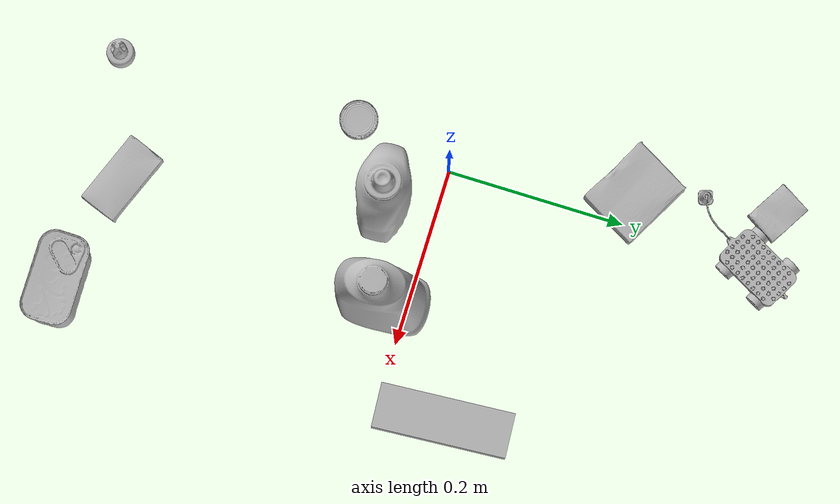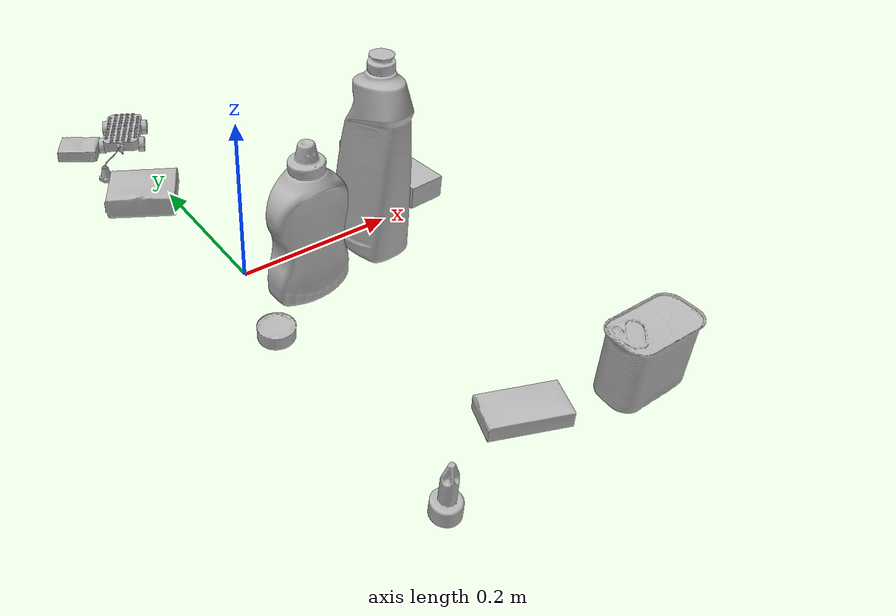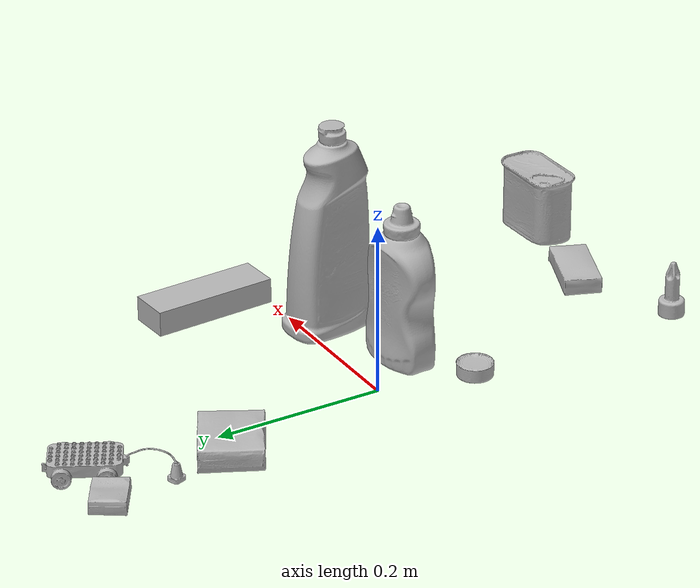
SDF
<sdf version="1.4">
  <world name="default">
    <light name="light1" type="point">
      <pose>0 0 1 0 0 0</pose>
      <diffuse>3 3 3 1</diffuse>
      <specular>3 3 3 1</specular>
    </light>
    <light name="light2" type="point">
      <pose>0 0.5 2 0 0 0</pose>
      <diffuse>1 1 1 1</diffuse>
      <specular>1 1 1 1</specular>
    </light>
    <light name="light3" type="point">
      <pose>0 0.5 2 0 0 0</pose>
      <diffuse>3 3 3 1</diffuse>
      <specular>3 3 3 1</specular>
    </light>
    <scene>
      <ambient>0.7 0.7 0.7</ambient>
    </scene>
    <model name="bottle1">
      <link name="link_bottle1">
        <collision name="default">
          <geometry>
            <mesh>
              <uri>model://bleach_cleanser/collision_meshes/collision.obj</uri>
              <scale>1.0 1.0 1.0</scale>
            </mesh>
          </geometry>
          <surface>
            <friction>
              <ode>
                <mu>0.5</mu>
                <mu2>0.5</mu2>
              </ode>
            </friction>
          <contact>
        <ode>
            <max_vel>0</max_vel>
            <min_depth>0.0001</min_depth>
            <kp>1e8</kp>
        </ode>
    </contact></surface>
        </collision>
        <visual name="default">
          <geometry>
            <mesh>
              <uri>model://bleach_cleanser/visual_meshes/visual.dae</uri>
              <scale>1.0 1.0 1.0</scale>
            </mesh>
          </geometry>
        </visual>
        <inertial>
          <mass>0.8435376882553101</mass>
          <pose>0.00012193185102660209 0.0037838835269212723 -0.02442161925137043 -0.0738167136291003 0.00042011570398771517 -0.0068750683244174</pose>
          <inertia>
            <ixx>0.0041056215</ixx>
            <iyy>0.0038258375</iyy>
            <izz>0.0007019545</izz>
            <ixy>0</ixy>
            <ixz>0</ixz>
            <iyz>0</iyz>
          </inertia>
        </inertial>
      </link>
      <pose>0.15823127329349518 -0.02647860161960125 0.12578421831130981 -0.0001996232838599376 1.6271802290434544e-05 -3.0481163842660393</pose>
    </model>
    <model name="bottle2">
      <link name="link_bottle2">
        <collision name="default">
          <geometry>
            <mesh>
              <uri>model://mustard_bottle/collision_meshes/collision.obj</uri>
              <scale>1.0 1.0 1.0</scale>
            </mesh>
          </geometry>
          <surface>
            <friction>
              <ode>
                <mu>0.5</mu>
                <mu2>0.5</mu2>
              </ode>
            </friction>
          <contact>
        <ode>
            <max_vel>0</max_vel>
            <min_depth>0.0001</min_depth>
            <kp>1e8</kp>
        </ode>
    </contact></surface>
        </collision>
        <visual name="default">
          <geometry>
            <mesh>
              <uri>model://mustard_bottle/visual_meshes/visual.dae</uri>
              <scale>1.0 1.0 1.0</scale>
            </mesh>
          </geometry>
        </visual>
        <inertial>
          <mass>0.5862947106361389</mass>
          <pose>0.0005032453336752951 -0.00015647400869056582 -0.01747579500079155 0.0004182326333961274 0.0009465780125852031 0.02485369627950655</pose>
          <inertia>
            <ixx>0.0016280604</ixx>
            <iyy>0.001428485</iyy>
            <izz>0.00042907606</izz>
            <ixy>0</ixy>
            <ixz>0</ixz>
            <iyz>0</iyz>
          </inertia>
        </inertial>
      </link>
      <pose>0.04957292973995209 -0.05975480377674103 0.09583086520433426 -0.01205078118548222 -0.0048895924652901926 1.618179347691472</pose>
    </model>
    <model name="toy1">
      <link name="link_toy1">
        <collision name="default">
          <geometry>
            <mesh>
              <uri>model://d_toy_airplane/collision_meshes/collision.obj</uri>
              <scale>1.0 1.0 1.0</scale>
            </mesh>
          </geometry>
          <surface>
            <friction>
              <ode>
                <mu>0.5</mu>
                <mu2>0.5</mu2>
              </ode>
            </friction>
          <contact>
        <ode>
            <max_vel>0</max_vel>
            <min_depth>0.0001</min_depth>
            <kp>1e8</kp>
        </ode>
    </contact></surface>
        </collision>
        <visual name="default">
          <geometry>
            <mesh>
              <uri>model://d_toy_airplane/visual_meshes/visual.dae</uri>
              <scale>1.0 1.0 1.0</scale>
            </mesh>
          </geometry>
        </visual>
        <inertial>
          <mass>0.016342557966709137</mass>
          <pose>9.410292841494083e-05 -5.809347931062803e-05 -0.011728093959391117 0.0002665850352305412 0.004678995185611379 0.5193821656772198</pose>
          <inertia>
            <ixx>4.8991824e-06</ixx>
            <iyy>4.9028777e-06</iyy>
            <izz>1.4790946e-06</izz>
            <ixy>0</ixy>
            <ixz>0</ixz>
            <iyz>0</iyz>
          </inertia>
        </inertial>
      </link>
      <pose>-0.01794704981148243 -0.38372600078582764 0.033339086920022964 2.0734439498728143e-05 -8.831643309865783e-05 0.38657042383167567</pose>
    </model>
    <model name="toy2">
      <link name="link_toy2">
        <collision name="default">
          <geometry>
            <mesh>
              <uri>model://g_lego_duplo/collision_meshes/collision.obj</uri>
              <scale>0.5 0.5 0.5</scale>
            </mesh>
          </geometry>
          <surface>
            <friction>
              <ode>
                <mu>0.5</mu>
                <mu2>0.5</mu2>
              </ode>
            </friction>
          <contact>
        <ode>
            <max_vel>0</max_vel>
            <min_depth>0.0001</min_depth>
            <kp>1e8</kp>
        </ode>
    </contact></surface>
        </collision>
        <visual name="default">
          <geometry>
            <mesh>
              <uri>model://g_lego_duplo/visual_meshes/visual.dae</uri>
              <scale>0.5 0.5 0.5</scale>
            </mesh>
          </geometry>
        </visual>
        <inertial>
          <mass>0.06075087562203407</mass>
          <pose>-0.02502383105456829 0.0008777320035733283 0.0019403373589739203 0.010962969944672394 0.038108282316868566 -0.09653022106038826</pose>
          <inertia>
            <ixx>2.2007183e-05</ixx>
            <iyy>6.65348e-05</iyy>
            <izz>8.323752e-05</izz>
            <ixy>0</ixy>
            <ixz>0</ixz>
            <iyz>0</iyz>
          </inertia>
        </inertial>
      </link>
      <pose>-0.012341924011707306 0.3294965326786041 0.014968112111091614 0.0016094785236789545 -0.003978803392339806 -2.070882455310653</pose>
    </model>
    <model name="can1">
      <link name="link_can1">
        <collision name="default">
          <geometry>
            <mesh>
              <uri>model://potted_meat_can/collision_meshes/collision.obj</uri>
              <scale>1.0 1.0 1.0</scale>
            </mesh>
          </geometry>
          <surface>
            <friction>
              <ode>
                <mu>0.5</mu>
                <mu2>0.5</mu2>
              </ode>
            </friction>
          <contact>
        <ode>
            <max_vel>0</max_vel>
            <min_depth>0.0001</min_depth>
            <kp>1e8</kp>
        </ode>
    </contact></surface>
        </collision>
        <visual name="default">
          <geometry>
            <mesh>
              <uri>model://potted_meat_can/visual_meshes/visual.dae</uri>
              <scale>1.0 1.0 1.0</scale>
            </mesh>
          </geometry>
        </visual>
        <inertial>
          <mass>0.20078136026859283</mass>
          <pose>0.00022888144303578883 -5.9891190176131204e-05 -0.0006367445457726717 -0.02809335636395505 -0.007232596981483405 0.015406261474000347</pose>
          <inertia>
            <ixx>0.0002582842</ixx>
            <iyy>0.00015692727</iyy>
            <izz>0.0001878526</izz>
            <ixy>0</ixy>
            <ixz>0</ixz>
            <iyz>0</iyz>
          </inertia>
        </inertial>
      </link>
      <pose>0.2441454827785492 -0.3705446124076843 0.04212800785899162 -3.31016932814505e-08 -6.656687251644667e-07 -1.5810629534831653</pose>
    </model>
    <model name="can2">
      <link name="link_can2">
        <collision name="default">
          <geometry>
            <mesh>
              <uri>model://tuna_fish_can/collision_meshes/collision.obj</uri>
              <scale>0.5 0.5 0.5</scale>
            </mesh>
          </geometry>
          <surface>
            <friction>
              <ode>
                <mu>0.5</mu>
                <mu2>0.5</mu2>
              </ode>
            </friction>
          <contact>
        <ode>
            <max_vel>0</max_vel>
            <min_depth>0.0001</min_depth>
            <kp>1e8</kp>
        </ode>
    </contact></surface>
        </collision>
        <visual name="default">
          <geometry>
            <mesh>
              <uri>model://tuna_fish_can/visual_meshes/visual.dae</uri>
              <scale>0.5 0.5 0.5</scale>
            </mesh>
          </geometry>
        </visual>
        <inertial>
          <mass>0.014736190438270569</mass>
          <pose>-2.036184559983667e-05 -7.256420758494642e-06 -0.0005269023822620511 -0.0017944748482382063 0.00017166274907885265 0.24056368509195397</pose>
          <inertia>
            <ixx>1.992355e-06</ixx>
            <iyy>1.9840513e-06</iyy>
            <izz>3.409204e-06</izz>
            <ixy>0</ixy>
            <ixz>0</ixz>
            <iyz>0</iyz>
          </inertia>
        </inertial>
      </link>
      <pose>-0.024290068075060844 -0.11110097169876099 0.00851999968290329 -4.404567628620423e-09 -5.76380052277207e-09 -0.6965880966220014</pose>
    </model>
    <model name="box1">
      <link name="link_box1">
        <collision name="default">
          <geometry>
            <mesh>
              <uri>model://sugar_box/collision_meshes/collision.obj</uri>
              <scale>0.5 0.5 0.5</scale>
            </mesh>
          </geometry>
          <surface>
            <friction>
              <ode>
                <mu>0.5</mu>
                <mu2>0.5</mu2>
              </ode>
            </friction>
          <contact>
        <ode>
            <max_vel>0</max_vel>
            <min_depth>0.0001</min_depth>
            <kp>1e8</kp>
        </ode>
    </contact></surface>
        </collision>
        <visual name="default">
          <geometry>
            <mesh>
              <uri>model://sugar_box/visual_meshes/visual.dae</uri>
              <scale>0.5 0.5 0.5</scale>
            </mesh>
          </geometry>
        </visual>
        <inertial>
          <mass>0.12222740799188614</mass>
          <pose>0.0005171863595023751 1.9245549992774613e-05 -0.00018182404164690524 -0.000404625834306888 0.0010506637544316808 0.0026153790219515644</pose>
          <inertia>
            <ixx>2.5459884e-05</ixx>
            <iyy>8.229157e-05</iyy>
            <izz>9.851283e-05</izz>
            <ixy>0</ixy>
            <ixz>0</ixz>
            <iyz>0</iyz>
          </inertia>
        </inertial>
      </link>
      <pose>0.11441242694854736 -0.33972227573394775 0.011399301700294018 0.0007752727990073061 -0.0234332263554162 -0.3784326932256149</pose>
    </model>
    <model name="box2">
      <link name="link_box2">
        <collision name="default">
          <geometry>
            <mesh>
              <uri>model://jenga/collision_meshes/collision.obj</uri>
              <scale>1.0 1.0 1.0</scale>
            </mesh>
          </geometry>
          <surface>
            <friction>
              <ode>
                <mu>0.5</mu>
                <mu2>0.5</mu2>
              </ode>
            </friction>
          <contact>
        <ode>
            <max_vel>0</max_vel>
            <min_depth>0.0001</min_depth>
            <kp>1e8</kp>
        </ode>
    </contact></surface>
        </collision>
        <visual name="default">
          <geometry>
            <mesh>
              <uri>model://jenga/visual_meshes/visual.dae</uri>
              <scale>1.0 1.0 1.0</scale>
            </mesh>
          </geometry>
        </visual>
        <inertial>
          <mass>0.17645145952701569</mass>
          <pose>-2.502855807051674e-07 -0.00010250011109746993 -4.0923405322246253e-05 0.0 -7.342155186052628e-07 0.0</pose>
          <inertia>
            <ixx>4.8828406e-05</ixx>
            <iyy>0.00033085994</iyy>
            <izz>0.00035322108</izz>
            <ixy>0</ixy>
            <ixz>0</ixz>
            <iyz>0</iyz>
          </inertia>
        </inertial>
      </link>
      <pose>0.26498323678970337 0.0750744417309761 0.01499999687075615 1.6168364123913257e-09 7.021571722115244e-11 -1.5042061329197807</pose>
    </model>
    <model name="box3">
      <link name="link_box3">
        <collision name="default">
          <geometry>
            <mesh>
              <uri>model://gelatin_box/collision_meshes/collision.obj</uri>
              <scale>1.0 1.0 1.0</scale>
            </mesh>
          </geometry>
          <surface>
            <friction>
              <ode>
                <mu>0.5</mu>
                <mu2>0.5</mu2>
              </ode>
            </friction>
          <contact>
        <ode>
            <max_vel>0</max_vel>
            <min_depth>0.0001</min_depth>
            <kp>1e8</kp>
        </ode>
    </contact></surface>
        </collision>
        <visual name="default">
          <geometry>
            <mesh>
              <uri>model://gelatin_box/visual_meshes/visual.dae</uri>
              <scale>1.0 1.0 1.0</scale>
            </mesh>
          </geometry>
        </visual>
        <inertial>
          <mass>0.13059620559215546</mass>
          <pose>0.0004319618456065655 0.00011156871914863586 -0.0003640321083366871 -0.0010503721928909568 -0.00475581775899517 0.01644055574591333</pose>
          <inertia>
            <ixx>9.219027e-05</ixx>
            <iyy>6.585102e-05</iyy>
            <izz>0.00014033413</izz>
            <ixy>0</ixy>
            <ixz>0</ixz>
            <iyz>0</iyz>
          </inertia>
        </inertial>
      </link>
      <pose>-0.03561902418732643 0.20243795216083527 0.01516831573098898 0.005597454960872543 -0.0073045424005893315 -2.081914134313533</pose>
    </model>
    <model name="box4">
      <link name="link_box4">
        <collision name="default">
          <geometry>
            <mesh>
              <uri>model://cracker_box/collision_meshes/collision.obj</uri>
              <scale>0.25 0.25 0.25</scale>
            </mesh>
          </geometry>
          <surface>
            <friction>
              <ode>
                <mu>0.5</mu>
                <mu2>0.5</mu2>
              </ode>
            </friction>
          <contact>
        <ode>
            <max_vel>0</max_vel>
            <min_depth>0.0001</min_depth>
            <kp>1e8</kp>
        </ode>
    </contact></surface>
        </collision>
        <visual name="default">
          <geometry>
            <mesh>
              <uri>model://cracker_box/visual_meshes/visual.dae</uri>
              <scale>0.25 0.25 0.25</scale>
            </mesh>
          </geometry>
        </visual>
        <inertial>
          <mass>0.04771818593144417</mass>
          <pose>0.0002366032567806542 6.358561950037256e-05 -0.00042573839891701937 -0.00031620769108308636 -0.011106489600173282 0.0025467959336867136</pose>
          <inertia>
            <ixx>7.5858593e-06</ixx>
            <iyy>1.2525745e-05</iyy>
            <izz>1.7875387e-05</izz>
            <ixy>0</ixy>
            <ixz>0</ixz>
            <iyz>0</iyz>
          </inertia>
        </inertial>
      </link>
      <pose>-0.06136854365468025 0.35898590087890625 0.009120674803853035 -0.011699695708120832 -0.007268996839997992 2.5961658387850077</pose>
    </model>
  <physics type="ode">
      <max_contacts>50</max_contacts>
      <ode>
        <solver>
          <type>quick</type>
          <iters>75</iters>
        </solver>
        <constraints>
          <contact_max_correcting_vel>0</contact_max_correcting_vel>
          <contact_surface_layer>0</contact_surface_layer>
        </constraints>
      </ode>
    </physics></world>
</sdf>
